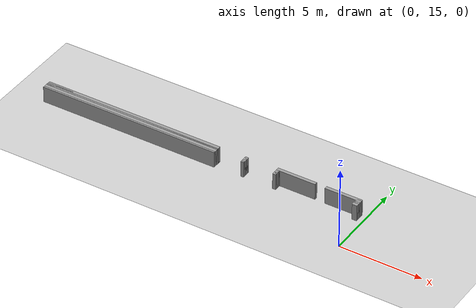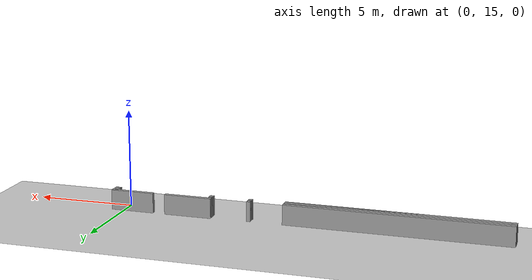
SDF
<sdf version="1.6">
 <world name="GridMap">
  <include><uri>model://sun</uri></include>
  <include><uri>model://ground_plane</uri></include>
  <model name="GridMap">
   <link name="Wall_(143.5,168.0)">
    <collision name="Wall_(143.5,168.0)_Collision">
     <geometry><box><size>11.100000000000001 0.2 1.0</size></box></geometry>
     <pose>-14.350000000000001 16.8 0.5 0 -0 0</pose>
    </collision>
    <visual name="Wall_(143.5,168.0)_Visual">
     <geometry><box><size>11.100000000000001 0.2 1.0</size></box></geometry>
     <pose>-14.350000000000001 16.8 0.5 0 -0 0</pose>
     <material>
      <script><uri>file://media/materials/scripts/gazebo.material</uri><name>Gazebo/Grey</name></script>
      <ambient>1 1 1 1</ambient>
     </material>
     <meta><layer>0</layer></meta>
    </visual>
    <pose>0 0 0.5 0 -0 0</pose>
   </link>
   <link name="Wall_(1.5,169.0)">
    <collision name="Wall_(1.5,169.0)_Collision">
     <geometry><box><size>0.30000000000000004 0.2 1.0</size></box></geometry>
     <pose>-0.15000000000000002 16.900000000000002 0.5 0 -0 0</pose>
    </collision>
    <visual name="Wall_(1.5,169.0)_Visual">
     <geometry><box><size>0.30000000000000004 0.2 1.0</size></box></geometry>
     <pose>-0.15000000000000002 16.900000000000002 0.5 0 -0 0</pose>
     <material>
      <script><uri>file://media/materials/scripts/gazebo.material</uri><name>Gazebo/Grey</name></script>
      <ambient>1 1 1 1</ambient>
     </material>
     <meta><layer>0</layer></meta>
    </visual>
    <pose>0 0 0.5 0 -0 0</pose>
   </link>
   <link name="Wall_(51.0,169.0)">
    <collision name="Wall_(51.0,169.0)_Collision">
     <geometry><box><size>0.2 0.2 1.0</size></box></geometry>
     <pose>-5.1000000000000005 16.900000000000002 0.5 0 -0 0</pose>
    </collision>
    <visual name="Wall_(51.0,169.0)_Visual">
     <geometry><box><size>0.2 0.2 1.0</size></box></geometry>
     <pose>-5.1000000000000005 16.900000000000002 0.5 0 -0 0</pose>
     <material>
      <script><uri>file://media/materials/scripts/gazebo.material</uri><name>Gazebo/Grey</name></script>
      <ambient>1 1 1 1</ambient>
     </material>
     <meta><layer>0</layer></meta>
    </visual>
    <pose>0 0 0.5 0 -0 0</pose>
   </link>
   <link name="Wall_(71.0,169.0)">
    <collision name="Wall_(71.0,169.0)_Collision">
     <geometry><box><size>0.2 0.2 1.0</size></box></geometry>
     <pose>-7.1000000000000005 16.900000000000002 0.5 0 -0 0</pose>
    </collision>
    <visual name="Wall_(71.0,169.0)_Visual">
     <geometry><box><size>0.2 0.2 1.0</size></box></geometry>
     <pose>-7.1000000000000005 16.900000000000002 0.5 0 -0 0</pose>
     <material>
      <script><uri>file://media/materials/scripts/gazebo.material</uri><name>Gazebo/Grey</name></script>
      <ambient>1 1 1 1</ambient>
     </material>
     <meta><layer>0</layer></meta>
    </visual>
    <pose>0 0 0.5 0 -0 0</pose>
   </link>
   <link name="Wall_(143.5,169.0)">
    <collision name="Wall_(143.5,169.0)_Collision">
     <geometry><box><size>11.100000000000001 0.2 1.0</size></box></geometry>
     <pose>-14.350000000000001 16.900000000000002 0.5 0 -0 0</pose>
    </collision>
    <visual name="Wall_(143.5,169.0)_Visual">
     <geometry><box><size>11.100000000000001 0.2 1.0</size></box></geometry>
     <pose>-14.350000000000001 16.900000000000002 0.5 0 -0 0</pose>
     <material>
      <script><uri>file://media/materials/scripts/gazebo.material</uri><name>Gazebo/Grey</name></script>
      <ambient>1 1 1 1</ambient>
     </material>
     <meta><layer>0</layer></meta>
    </visual>
    <pose>0 0 0.5 0 -0 0</pose>
   </link>
   <link name="Wall_(1.5,170.0)">
    <collision name="Wall_(1.5,170.0)_Collision">
     <geometry><box><size>0.30000000000000004 0.2 1.0</size></box></geometry>
     <pose>-0.15000000000000002 17.0 0.5 0 -0 0</pose>
    </collision>
    <visual name="Wall_(1.5,170.0)_Visual">
     <geometry><box><size>0.30000000000000004 0.2 1.0</size></box></geometry>
     <pose>-0.15000000000000002 17.0 0.5 0 -0 0</pose>
     <material>
      <script><uri>file://media/materials/scripts/gazebo.material</uri><name>Gazebo/Grey</name></script>
      <ambient>1 1 1 1</ambient>
     </material>
     <meta><layer>0</layer></meta>
    </visual>
    <pose>0 0 0.5 0 -0 0</pose>
   </link>
   <link name="Wall_(51.0,170.0)">
    <collision name="Wall_(51.0,170.0)_Collision">
     <geometry><box><size>0.2 0.2 1.0</size></box></geometry>
     <pose>-5.1000000000000005 17.0 0.5 0 -0 0</pose>
    </collision>
    <visual name="Wall_(51.0,170.0)_Visual">
     <geometry><box><size>0.2 0.2 1.0</size></box></geometry>
     <pose>-5.1000000000000005 17.0 0.5 0 -0 0</pose>
     <material>
      <script><uri>file://media/materials/scripts/gazebo.material</uri><name>Gazebo/Grey</name></script>
      <ambient>1 1 1 1</ambient>
     </material>
     <meta><layer>0</layer></meta>
    </visual>
    <pose>0 0 0.5 0 -0 0</pose>
   </link>
   <link name="Wall_(71.0,170.0)">
    <collision name="Wall_(71.0,170.0)_Collision">
     <geometry><box><size>0.2 0.2 1.0</size></box></geometry>
     <pose>-7.1000000000000005 17.0 0.5 0 -0 0</pose>
    </collision>
    <visual name="Wall_(71.0,170.0)_Visual">
     <geometry><box><size>0.2 0.2 1.0</size></box></geometry>
     <pose>-7.1000000000000005 17.0 0.5 0 -0 0</pose>
     <material>
      <script><uri>file://media/materials/scripts/gazebo.material</uri><name>Gazebo/Grey</name></script>
      <ambient>1 1 1 1</ambient>
     </material>
     <meta><layer>0</layer></meta>
    </visual>
    <pose>0 0 0.5 0 -0 0</pose>
   </link>
   <link name="Wall_(143.5,170.0)">
    <collision name="Wall_(143.5,170.0)_Collision">
     <geometry><box><size>11.100000000000001 0.2 1.0</size></box></geometry>
     <pose>-14.350000000000001 17.0 0.5 0 -0 0</pose>
    </collision>
    <visual name="Wall_(143.5,170.0)_Visual">
     <geometry><box><size>11.100000000000001 0.2 1.0</size></box></geometry>
     <pose>-14.350000000000001 17.0 0.5 0 -0 0</pose>
     <material>
      <script><uri>file://media/materials/scripts/gazebo.material</uri><name>Gazebo/Grey</name></script>
      <ambient>1 1 1 1</ambient>
     </material>
     <meta><layer>0</layer></meta>
    </visual>
    <pose>0 0 0.5 0 -0 0</pose>
   </link>
   <link name="Wall_(1.5,171.0)">
    <collision name="Wall_(1.5,171.0)_Collision">
     <geometry><box><size>0.30000000000000004 0.2 1.0</size></box></geometry>
     <pose>-0.15000000000000002 17.1 0.5 0 -0 0</pose>
    </collision>
    <visual name="Wall_(1.5,171.0)_Visual">
     <geometry><box><size>0.30000000000000004 0.2 1.0</size></box></geometry>
     <pose>-0.15000000000000002 17.1 0.5 0 -0 0</pose>
     <material>
      <script><uri>file://media/materials/scripts/gazebo.material</uri><name>Gazebo/Grey</name></script>
      <ambient>1 1 1 1</ambient>
     </material>
     <meta><layer>0</layer></meta>
    </visual>
    <pose>0 0 0.5 0 -0 0</pose>
   </link>
   <link name="Wall_(51.0,171.0)">
    <collision name="Wall_(51.0,171.0)_Collision">
     <geometry><box><size>0.2 0.2 1.0</size></box></geometry>
     <pose>-5.1000000000000005 17.1 0.5 0 -0 0</pose>
    </collision>
    <visual name="Wall_(51.0,171.0)_Visual">
     <geometry><box><size>0.2 0.2 1.0</size></box></geometry>
     <pose>-5.1000000000000005 17.1 0.5 0 -0 0</pose>
     <material>
      <script><uri>file://media/materials/scripts/gazebo.material</uri><name>Gazebo/Grey</name></script>
      <ambient>1 1 1 1</ambient>
     </material>
     <meta><layer>0</layer></meta>
    </visual>
    <pose>0 0 0.5 0 -0 0</pose>
   </link>
   <link name="Wall_(71.0,171.0)">
    <collision name="Wall_(71.0,171.0)_Collision">
     <geometry><box><size>0.2 0.2 1.0</size></box></geometry>
     <pose>-7.1000000000000005 17.1 0.5 0 -0 0</pose>
    </collision>
    <visual name="Wall_(71.0,171.0)_Visual">
     <geometry><box><size>0.2 0.2 1.0</size></box></geometry>
     <pose>-7.1000000000000005 17.1 0.5 0 -0 0</pose>
     <material>
      <script><uri>file://media/materials/scripts/gazebo.material</uri><name>Gazebo/Grey</name></script>
      <ambient>1 1 1 1</ambient>
     </material>
     <meta><layer>0</layer></meta>
    </visual>
    <pose>0 0 0.5 0 -0 0</pose>
   </link>
   <link name="Wall_(143.5,171.0)">
    <collision name="Wall_(143.5,171.0)_Collision">
     <geometry><box><size>11.100000000000001 0.2 1.0</size></box></geometry>
     <pose>-14.350000000000001 17.1 0.5 0 -0 0</pose>
    </collision>
    <visual name="Wall_(143.5,171.0)_Visual">
     <geometry><box><size>11.100000000000001 0.2 1.0</size></box></geometry>
     <pose>-14.350000000000001 17.1 0.5 0 -0 0</pose>
     <material>
      <script><uri>file://media/materials/scripts/gazebo.material</uri><name>Gazebo/Grey</name></script>
      <ambient>1 1 1 1</ambient>
     </material>
     <meta><layer>0</layer></meta>
    </visual>
    <pose>0 0 0.5 0 -0 0</pose>
   </link>
   <link name="Wall_(1.5,172.0)">
    <collision name="Wall_(1.5,172.0)_Collision">
     <geometry><box><size>0.30000000000000004 0.2 1.0</size></box></geometry>
     <pose>-0.15000000000000002 17.2 0.5 0 -0 0</pose>
    </collision>
    <visual name="Wall_(1.5,172.0)_Visual">
     <geometry><box><size>0.30000000000000004 0.2 1.0</size></box></geometry>
     <pose>-0.15000000000000002 17.2 0.5 0 -0 0</pose>
     <material>
      <script><uri>file://media/materials/scripts/gazebo.material</uri><name>Gazebo/Grey</name></script>
      <ambient>1 1 1 1</ambient>
     </material>
     <meta><layer>0</layer></meta>
    </visual>
    <pose>0 0 0.5 0 -0 0</pose>
   </link>
   <link name="Wall_(51.0,172.0)">
    <collision name="Wall_(51.0,172.0)_Collision">
     <geometry><box><size>0.2 0.2 1.0</size></box></geometry>
     <pose>-5.1000000000000005 17.2 0.5 0 -0 0</pose>
    </collision>
    <visual name="Wall_(51.0,172.0)_Visual">
     <geometry><box><size>0.2 0.2 1.0</size></box></geometry>
     <pose>-5.1000000000000005 17.2 0.5 0 -0 0</pose>
     <material>
      <script><uri>file://media/materials/scripts/gazebo.material</uri><name>Gazebo/Grey</name></script>
      <ambient>1 1 1 1</ambient>
     </material>
     <meta><layer>0</layer></meta>
    </visual>
    <pose>0 0 0.5 0 -0 0</pose>
   </link>
   <link name="Wall_(71.0,172.0)">
    <collision name="Wall_(71.0,172.0)_Collision">
     <geometry><box><size>0.2 0.2 1.0</size></box></geometry>
     <pose>-7.1000000000000005 17.2 0.5 0 -0 0</pose>
    </collision>
    <visual name="Wall_(71.0,172.0)_Visual">
     <geometry><box><size>0.2 0.2 1.0</size></box></geometry>
     <pose>-7.1000000000000005 17.2 0.5 0 -0 0</pose>
     <material>
      <script><uri>file://media/materials/scripts/gazebo.material</uri><name>Gazebo/Grey</name></script>
      <ambient>1 1 1 1</ambient>
     </material>
     <meta><layer>0</layer></meta>
    </visual>
    <pose>0 0 0.5 0 -0 0</pose>
   </link>
   <link name="Wall_(143.5,172.0)">
    <collision name="Wall_(143.5,172.0)_Collision">
     <geometry><box><size>11.100000000000001 0.2 1.0</size></box></geometry>
     <pose>-14.350000000000001 17.2 0.5 0 -0 0</pose>
    </collision>
    <visual name="Wall_(143.5,172.0)_Visual">
     <geometry><box><size>11.100000000000001 0.2 1.0</size></box></geometry>
     <pose>-14.350000000000001 17.2 0.5 0 -0 0</pose>
     <material>
      <script><uri>file://media/materials/scripts/gazebo.material</uri><name>Gazebo/Grey</name></script>
      <ambient>1 1 1 1</ambient>
     </material>
     <meta><layer>0</layer></meta>
    </visual>
    <pose>0 0 0.5 0 -0 0</pose>
   </link>
   <link name="Wall_(11.0,173.0)">
    <collision name="Wall_(11.0,173.0)_Collision">
     <geometry><box><size>2.2 0.2 1.0</size></box></geometry>
     <pose>-1.1 17.3 0.5 0 -0 0</pose>
    </collision>
    <visual name="Wall_(11.0,173.0)_Visual">
     <geometry><box><size>2.2 0.2 1.0</size></box></geometry>
     <pose>-1.1 17.3 0.5 0 -0 0</pose>
     <material>
      <script><uri>file://media/materials/scripts/gazebo.material</uri><name>Gazebo/Grey</name></script>
      <ambient>1 1 1 1</ambient>
     </material>
     <meta><layer>0</layer></meta>
    </visual>
    <pose>0 0 0.5 0 -0 0</pose>
   </link>
   <link name="Wall_(40.0,173.0)">
    <collision name="Wall_(40.0,173.0)_Collision">
     <geometry><box><size>2.4000000000000004 0.2 1.0</size></box></geometry>
     <pose>-4.0 17.3 0.5 0 -0 0</pose>
    </collision>
    <visual name="Wall_(40.0,173.0)_Visual">
     <geometry><box><size>2.4000000000000004 0.2 1.0</size></box></geometry>
     <pose>-4.0 17.3 0.5 0 -0 0</pose>
     <material>
      <script><uri>file://media/materials/scripts/gazebo.material</uri><name>Gazebo/Grey</name></script>
      <ambient>1 1 1 1</ambient>
     </material>
     <meta><layer>0</layer></meta>
    </visual>
    <pose>0 0 0.5 0 -0 0</pose>
   </link>
   <static>1</static>
  </model>
 </world>
</sdf>
